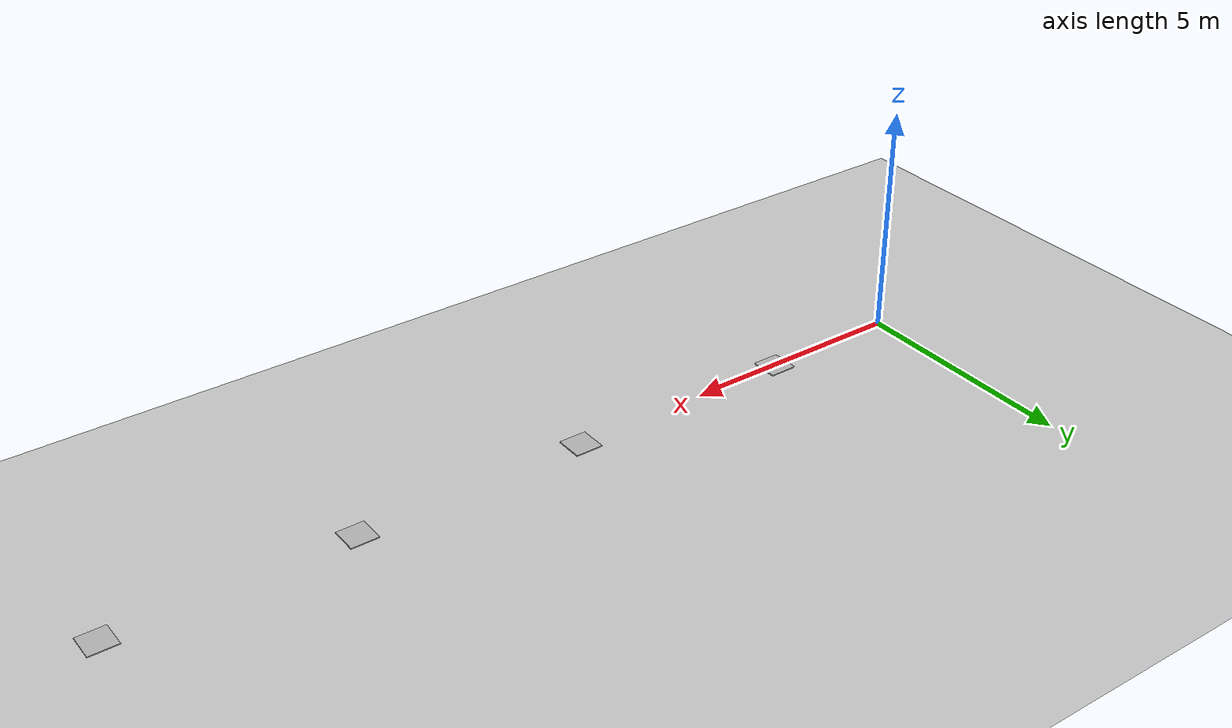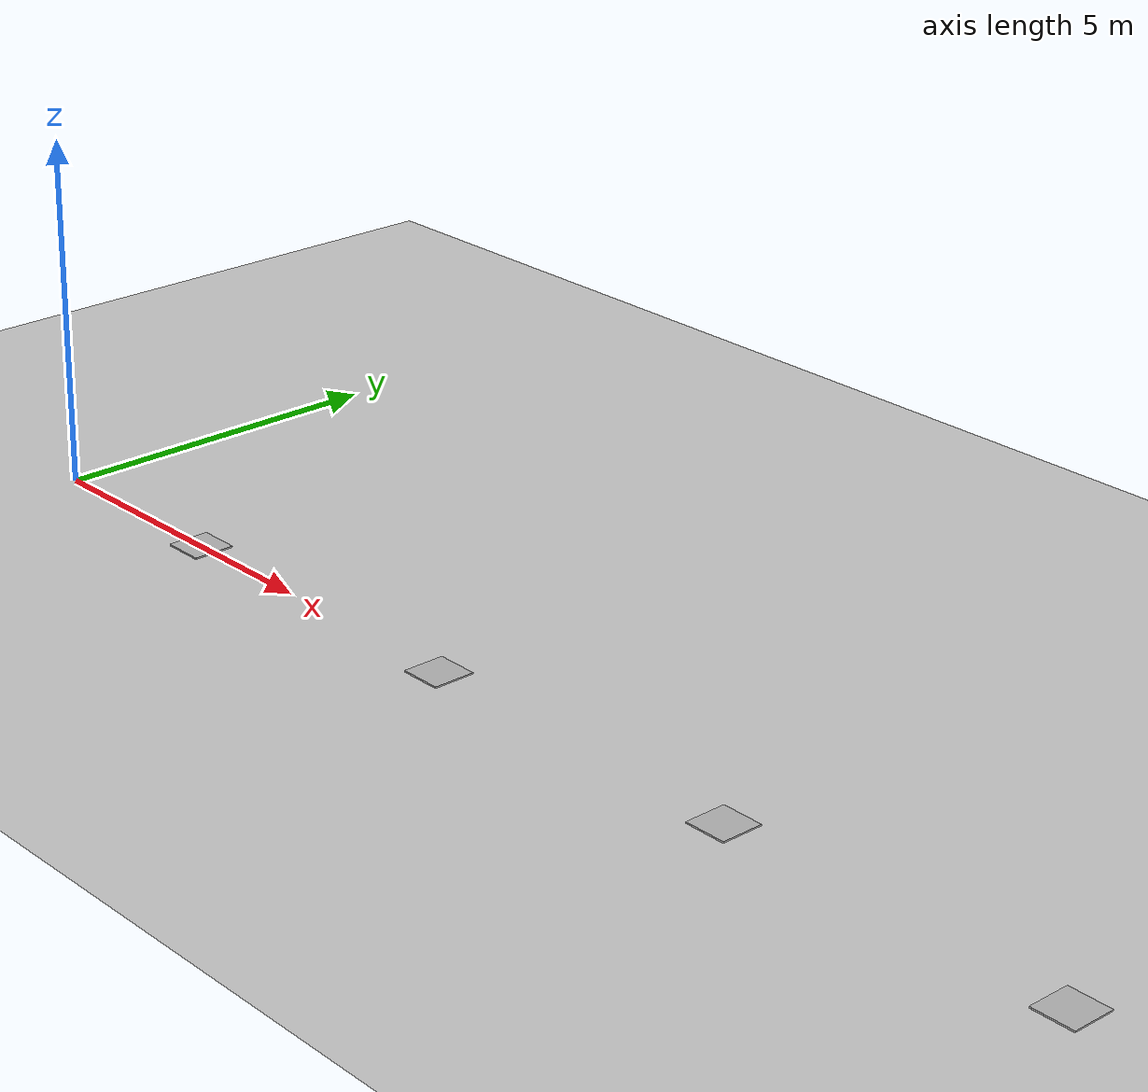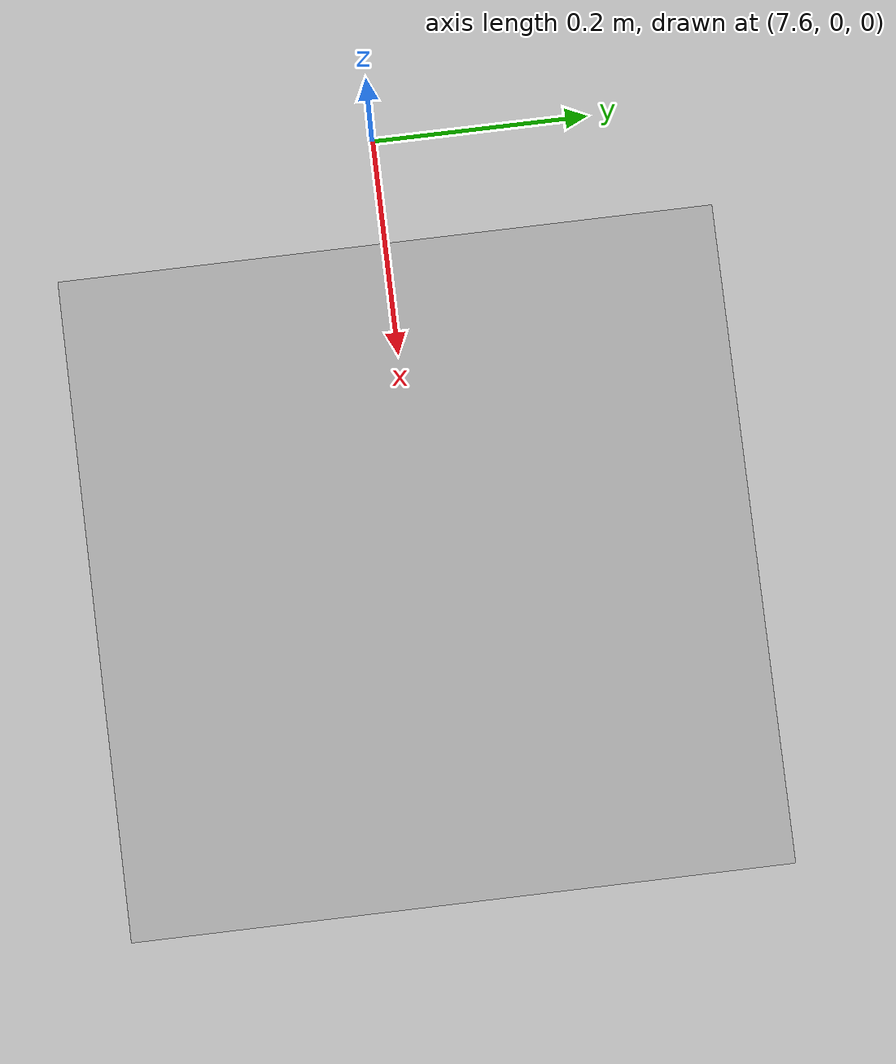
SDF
<sdf version='1.9'>
  <world name='aruco_line_world'>
    <!-- Physics -->
    <physics type="ode">
      <max_step_size>0.004</max_step_size>
      <real_time_factor>1.0</real_time_factor>
      <real_time_update_rate>250</real_time_update_rate>
    </physics>

    <!-- Plugins for Gazebo Sim -->
    <plugin name='gz::sim::systems::Physics' filename='gz-sim-physics-system'/>
    <plugin name='gz::sim::systems::UserCommands' filename='gz-sim-user-commands-system'/>
    <plugin name='gz::sim::systems::SceneBroadcaster' filename='gz-sim-scene-broadcaster-system'/>
    <plugin name='gz::sim::systems::Contact' filename='gz-sim-contact-system'/>
    <plugin name='gz::sim::systems::Imu' filename='gz-sim-imu-system'/>
    <plugin name='gz::sim::systems::AirPressure' filename='gz-sim-air-pressure-system'/>
    <plugin name='gz::sim::systems::Sensors' filename='gz-sim-sensors-system'>
      <render_engine>ogre2</render_engine>
    </plugin>

    <!-- GUI -->
        <gui fullscreen='false'>
      <plugin name='3D View' filename='GzScene3D'>
        <gz-gui>
          <title>3D View</title>
          <property type='bool' key='showTitleBar'>0</property>
          <property type='string' key='state'>docked</property>
        </gz-gui>
        <engine>ogre2</engine>
        <scene>scene</scene>
        <ambient_light>0.5984631152222222 0.5984631152222222 0.5984631152222222</ambient_light>
        <background_color>0.8984631152222222 0.8984631152222222 0.8984631152222222</background_color>
        <camera_pose>-6 0 6 0 0.5 0</camera_pose>
      </plugin>
      <plugin name='World control' filename='WorldControl'>
        <gz-gui>
          <title>World control</title>
          <property type='bool' key='showTitleBar'>0</property>
          <property type='bool' key='resizable'>0</property>
          <property type='double' key='height'>72</property>
          <property type='double' key='width'>121</property>
          <property type='double' key='z'>1</property>
          <property type='string' key='state'>floating</property>
          <anchors target='3D View'>
            <line own='left' target='left'/>
            <line own='bottom' target='bottom'/>
          </anchors>
        </gz-gui>
        <play_pause>1</play_pause>
        <step>1</step>
        <start_paused>1</start_paused>
      </plugin>
      <plugin name='World stats' filename='WorldStats'>
        <gz-gui>
          <title>World stats</title>
          <property type='bool' key='showTitleBar'>0</property>
          <property type='bool' key='resizable'>0</property>
          <property type='double' key='height'>110</property>
          <property type='double' key='width'>290</property>
          <property type='double' key='z'>1</property>
          <property type='string' key='state'>floating</property>
          <anchors target='3D View'>
            <line own='right' target='right'/>
            <line own='bottom' target='bottom'/>
          </anchors>
        </gz-gui>
        <sim_time>1</sim_time>
        <real_time>1</real_time>
        <real_time_factor>1</real_time_factor>
        <iterations>1</iterations>
      </plugin>
      <plugin name='Entity tree' filename='EntityTree'/>
    </gui>

    <!-- Lighting and Scene Settings -->
    <gravity>0 0 -9.8</gravity>
    <magnetic_field>6e-06 2.3e-05 -4.2e-05</magnetic_field>
    <atmosphere type='adiabatic'/>
    <scene>
      <grid>false</grid>
      <ambient>0.4 0.4 0.4 1</ambient>
      <background>0.7 0.7 0.7 1</background>
      <shadows>true</shadows>
    </scene>

    <!-- Ground Plane -->
    <model name='ground_plane'>
      <static>true</static>
      <link name='link'>
        <collision name='collision'>
          <geometry>
            <plane>
              <normal>0 0 1</normal>
              <size>1 1</size>
            </plane>
          </geometry>
          <surface>
            <friction>
              <ode/>
            </friction>
            <bounce/>
            <contact/>
          </surface>
        </collision>
        <visual name='visual'>
          <geometry>
            <plane>
              <normal>0 0 1</normal>
              <size>100 100</size>
            </plane>
          </geometry>
          <material>
            <ambient>0.8 0.8 0.8 1</ambient>
            <diffuse>0.8 0.8 0.8 1</diffuse>
            <specular>0.8 0.8 0.8 1</specular>
          </material>
        </visual>
      </link>
    </model>

    <!-- Sun Light -->
    <light name='sun' type='directional'>
      <pose>0 0 500 0 -0 0</pose>
      <cast_shadows>true</cast_shadows>
      <intensity>1</intensity>
      <direction>0.001 0.625 -0.78</direction>
      <diffuse>0.904 0.904 0.904 1</diffuse>
      <specular>0.271 0.271 0.271 1</specular>
    </light>

    <!-- ArUco Tag 1 -->
    <include>
      <uri>model://wamv_apriltag_array</uri>
      <name>aruco_tag_0</name>
      <pose>3 0 0.01 0 0 0</pose>
    </include>

    <!-- ArUco Tag 2 -->
    <include>
      <uri>model://wamv_apriltag_array</uri>
      <name>aruco_tag_1</name>
      <pose>8 0 0.01 0 0 0</pose>
    </include>

    <!-- ArUco Tag 3 -->
    <include>
      <uri>model://wamv_apriltag_array</uri>
      <name>aruco_tag_2</name>
      <pose>13 0 0.01 0 0 0</pose>
    </include>

    <!-- ArUco Tag 4 -->
    <include>
      <uri>model://wamv_apriltag_array</uri>
      <name>aruco_tag_3</name>
      <pose>18 0 0.01 0 0 0</pose>
    </include>

  </world>
</sdf>

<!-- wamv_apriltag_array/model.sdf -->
<sdf version="1.9">
  <model name="wamv_apriltag_array">
    <pose>0 0 0.01 0 0 0</pose>
    <static>true</static>
    <link name="link">
      <inertial>
        <mass>10.0</mass>
        <inertia> <!-- inertias are tricky to compute -->
          <!-- http://gazebosim.org/tutorials?tut=inertia&cat=build_robot -->
          <ixx>0.1</ixx>       <!-- for a box: ixx = 0.083 * mass * (y*y + z*z) -->
          <ixy>0.0</ixy>         <!-- for a box: ixy = 0 -->
          <ixz>0.0</ixz>         <!-- for a box: ixz = 0 -->
          <iyy>0.1</iyy>       <!-- for a box: iyy = 0.083 * mass * (x*x + z*z) -->
          <iyz>0.0</iyz>         <!-- for a box: iyz = 0 -->
          <izz>0.1</izz>       <!-- for a box: izz = 0.083 * mass * (x*x + y*y) -->
        </inertia>
      </inertial>
      <collision name="collision">
        <geometry>
          <box>
            <size>0.6 0.6 0.02</size>
          </box>
        </geometry>
      </collision>
      <visual name="visual">
        <geometry>
          <mesh>
            <uri>model://wamv_apriltag_array/meshes/wamv_apriltag_array.dae</uri>
            <scale>1 1 1</scale>
          </mesh>
        </geometry>
      </visual>
    </link>
  </model>
</sdf>
